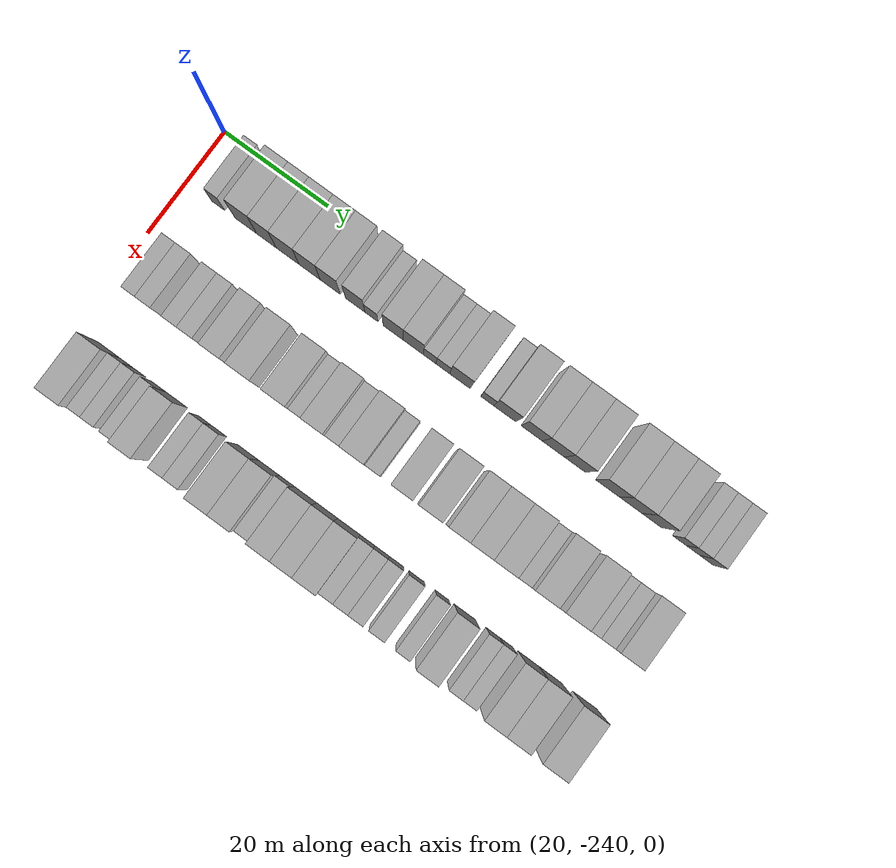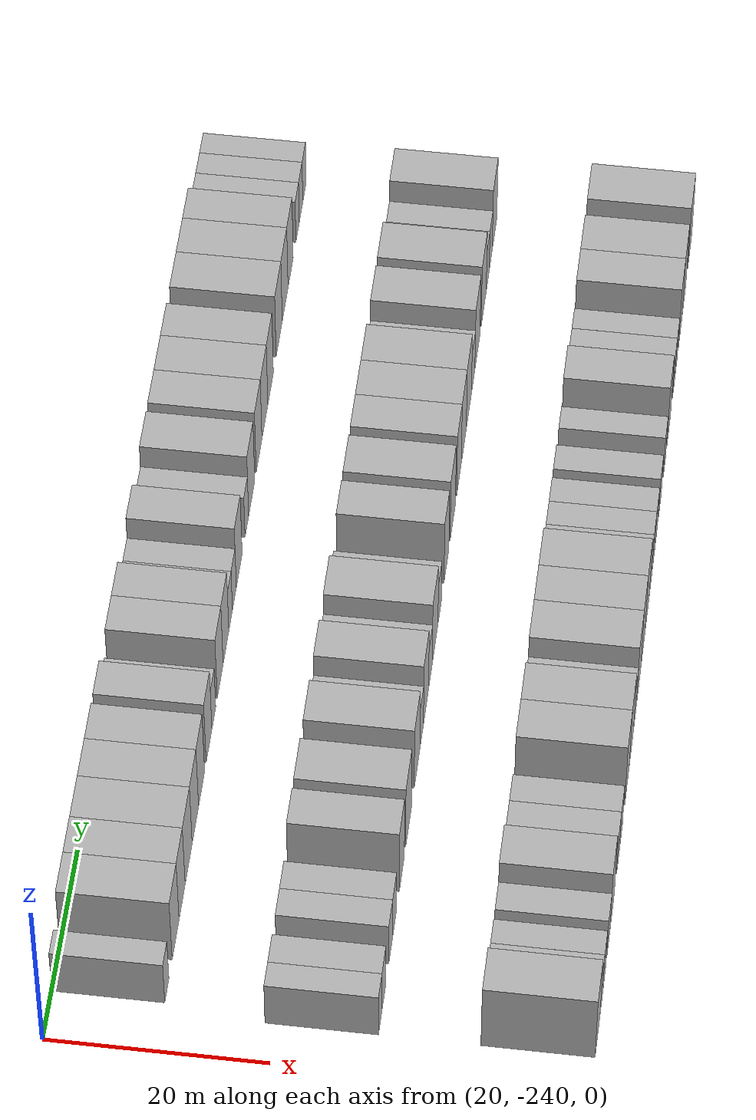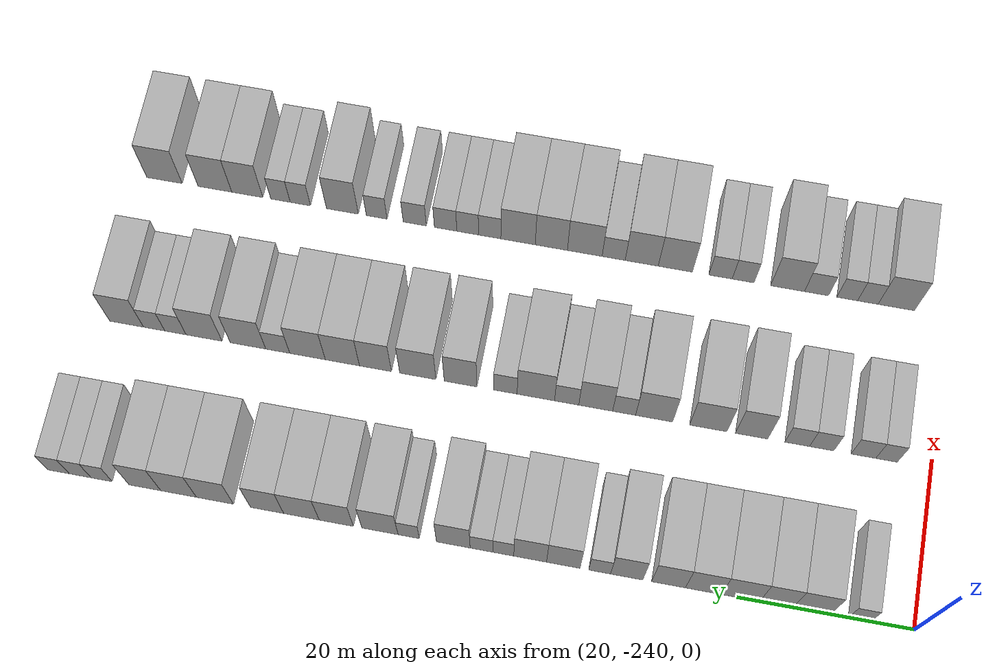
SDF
<sdf version="1.6">
 <world name="default">
  <model name="building_1">
   <static>1</static>
   <pose>25.0000 -233.7498 0 0.000000 0.000000 0.000000</pose>
   <link name="link">
    <pose>0 0 3.00 0 0 0</pose>
    <collision name="collision"><geometry><box><size>10.0000 2.5003 6.0000</size></box></geometry></collision>
    <visual name="visual">
     <cast_shadows>0</cast_shadows>
     <geometry><box><size>10.0000 2.5003 6.0000</size></box></geometry>
     <material>
      <script>
       <uri>model://HANNAS_wall/materials/scripts</uri>
       <uri>model://HANNAS_wall/materials/textures</uri>
       <name>vrc/HANNAS_wall</name>
      </script>
     </material>
    </visual>
   </link>
  </model>
  <model name="building_2">
   <static>1</static>
   <pose>25.0000 -228.3924 0 0.000000 0.000000 0.000000</pose>
   <link name="link">
    <pose>0 0 4.50 0 0 0</pose>
    <collision name="collision"><geometry><box><size>10.0000 4.2145 9.0000</size></box></geometry></collision>
    <visual name="visual">
     <cast_shadows>0</cast_shadows>
     <geometry><box><size>10.0000 4.2145 9.0000</size></box></geometry>
     <material>
      <script>
       <uri>model://HANNAS_wall/materials/scripts</uri>
       <uri>model://HANNAS_wall/materials/textures</uri>
       <name>vrc/HANNAS_wall</name>
      </script>
     </material>
    </visual>
   </link>
  </model>
  <model name="building_3">
   <static>1</static>
   <pose>25.0000 -224.3959 0 0.000000 0.000000 0.000000</pose>
   <link name="link">
    <pose>0 0 4.50 0 0 0</pose>
    <collision name="collision"><geometry><box><size>10.0000 3.7786 9.0000</size></box></geometry></collision>
    <visual name="visual">
     <cast_shadows>0</cast_shadows>
     <geometry><box><size>10.0000 3.7786 9.0000</size></box></geometry>
     <material>
      <script>
       <uri>model://HANNAS_wall/materials/scripts</uri>
       <uri>model://HANNAS_wall/materials/textures</uri>
       <name>vrc/HANNAS_wall</name>
      </script>
     </material>
    </visual>
   </link>
  </model>
  <model name="building_4">
   <static>1</static>
   <pose>25.0000 -220.3137 0 0.000000 0.000000 0.000000</pose>
   <link name="link">
    <pose>0 0 4.50 0 0 0</pose>
    <collision name="collision"><geometry><box><size>10.0000 4.3858 9.0000</size></box></geometry></collision>
    <visual name="visual">
     <cast_shadows>0</cast_shadows>
     <geometry><box><size>10.0000 4.3858 9.0000</size></box></geometry>
     <material>
      <script>
       <uri>model://HANNAS_wall/materials/scripts</uri>
       <uri>model://HANNAS_wall/materials/textures</uri>
       <name>vrc/HANNAS_wall</name>
      </script>
     </material>
    </visual>
   </link>
  </model>
  <model name="building_5">
   <static>1</static>
   <pose>25.0000 -216.0926 0 0.000000 0.000000 0.000000</pose>
   <link name="link">
    <pose>0 0 4.50 0 0 0</pose>
    <collision name="collision"><geometry><box><size>10.0000 4.0564 9.0000</size></box></geometry></collision>
    <visual name="visual">
     <cast_shadows>0</cast_shadows>
     <geometry><box><size>10.0000 4.0564 9.0000</size></box></geometry>
     <material>
      <script>
       <uri>model://HANNAS_wall/materials/scripts</uri>
       <uri>model://HANNAS_wall/materials/textures</uri>
       <name>vrc/HANNAS_wall</name>
      </script>
     </material>
    </visual>
   </link>
  </model>
  <model name="building_6">
   <static>1</static>
   <pose>25.0000 -212.1384 0 0.000000 0.000000 0.000000</pose>
   <link name="link">
    <pose>0 0 4.50 0 0 0</pose>
    <collision name="collision"><geometry><box><size>10.0000 3.8520 9.0000</size></box></geometry></collision>
    <visual name="visual">
     <cast_shadows>0</cast_shadows>
     <geometry><box><size>10.0000 3.8520 9.0000</size></box></geometry>
     <material>
      <script>
       <uri>model://HANNAS_wall/materials/scripts</uri>
       <uri>model://HANNAS_wall/materials/textures</uri>
       <name>vrc/HANNAS_wall</name>
      </script>
     </material>
    </visual>
   </link>
  </model>
  <model name="building_7">
   <static>1</static>
   <pose>25.0000 -207.3622 0 0.000000 0.000000 0.000000</pose>
   <link name="link">
    <pose>0 0 4.50 0 0 0</pose>
    <collision name="collision"><geometry><box><size>10.0000 3.7003 9.0000</size></box></geometry></collision>
    <visual name="visual">
     <cast_shadows>0</cast_shadows>
     <geometry><box><size>10.0000 3.7003 9.0000</size></box></geometry>
     <material>
      <script>
       <uri>model://HANNAS_wall/materials/scripts</uri>
       <uri>model://HANNAS_wall/materials/textures</uri>
       <name>vrc/HANNAS_wall</name>
      </script>
     </material>
    </visual>
   </link>
  </model>
  <model name="building_8">
   <static>1</static>
   <pose>25.0000 -204.2647 0 0.000000 0.000000 0.000000</pose>
   <link name="link">
    <pose>0 0 3.00 0 0 0</pose>
    <collision name="collision"><geometry><box><size>10.0000 2.4949 6.0000</size></box></geometry></collision>
    <visual name="visual">
     <cast_shadows>0</cast_shadows>
     <geometry><box><size>10.0000 2.4949 6.0000</size></box></geometry>
     <material>
      <script>
       <uri>model://HANNAS_wall/materials/scripts</uri>
       <uri>model://HANNAS_wall/materials/textures</uri>
       <name>vrc/HANNAS_wall</name>
      </script>
     </material>
    </visual>
   </link>
  </model>
  <model name="building_9">
   <static>1</static>
   <pose>25.0000 -200.0930 0 0.000000 0.000000 0.000000</pose>
   <link name="link">
    <pose>0 0 4.50 0 0 0</pose>
    <collision name="collision"><geometry><box><size>10.0000 3.8484 9.0000</size></box></geometry></collision>
    <visual name="visual">
     <cast_shadows>0</cast_shadows>
     <geometry><box><size>10.0000 3.8484 9.0000</size></box></geometry>
     <material>
      <script>
       <uri>model://HANNAS_wall/materials/scripts</uri>
       <uri>model://HANNAS_wall/materials/textures</uri>
       <name>vrc/HANNAS_wall</name>
      </script>
     </material>
    </visual>
   </link>
  </model>
  <model name="building_10">
   <static>1</static>
   <pose>25.0000 -196.2790 0 0.000000 0.000000 0.000000</pose>
   <link name="link">
    <pose>0 0 4.50 0 0 0</pose>
    <collision name="collision"><geometry><box><size>10.0000 3.7796 9.0000</size></box></geometry></collision>
    <visual name="visual">
     <cast_shadows>0</cast_shadows>
     <geometry><box><size>10.0000 3.7796 9.0000</size></box></geometry>
     <material>
      <script>
       <uri>model://HANNAS_wall/materials/scripts</uri>
       <uri>model://HANNAS_wall/materials/textures</uri>
       <name>vrc/HANNAS_wall</name>
      </script>
     </material>
    </visual>
   </link>
  </model>
  <model name="building_11">
   <static>1</static>
   <pose>25.0000 -193.1830 0 0.000000 0.000000 0.000000</pose>
   <link name="link">
    <pose>0 0 3.00 0 0 0</pose>
    <collision name="collision"><geometry><box><size>10.0000 2.4123 6.0000</size></box></geometry></collision>
    <visual name="visual">
     <cast_shadows>0</cast_shadows>
     <geometry><box><size>10.0000 2.4123 6.0000</size></box></geometry>
     <material>
      <script>
       <uri>model://HANNAS_wall/materials/scripts</uri>
       <uri>model://HANNAS_wall/materials/textures</uri>
       <name>vrc/HANNAS_wall</name>
      </script>
     </material>
    </visual>
   </link>
  </model>
  <model name="building_12">
   <static>1</static>
   <pose>25.0000 -190.6656 0 0.000000 0.000000 0.000000</pose>
   <link name="link">
    <pose>0 0 3.00 0 0 0</pose>
    <collision name="collision"><geometry><box><size>10.0000 2.6224 6.0000</size></box></geometry></collision>
    <visual name="visual">
     <cast_shadows>0</cast_shadows>
     <geometry><box><size>10.0000 2.6224 6.0000</size></box></geometry>
     <material>
      <script>
       <uri>model://HANNAS_wall/materials/scripts</uri>
       <uri>model://HANNAS_wall/materials/textures</uri>
       <name>vrc/HANNAS_wall</name>
      </script>
     </material>
    </visual>
   </link>
  </model>
  <model name="building_13">
   <static>1</static>
   <pose>25.0000 -187.4078 0 0.000000 0.000000 0.000000</pose>
   <link name="link">
    <pose>0 0 4.50 0 0 0</pose>
    <collision name="collision"><geometry><box><size>10.0000 3.8932 9.0000</size></box></geometry></collision>
    <visual name="visual">
     <cast_shadows>0</cast_shadows>
     <geometry><box><size>10.0000 3.8932 9.0000</size></box></geometry>
     <material>
      <script>
       <uri>model://HANNAS_wall/materials/scripts</uri>
       <uri>model://HANNAS_wall/materials/textures</uri>
       <name>vrc/HANNAS_wall</name>
      </script>
     </material>
    </visual>
   </link>
  </model>
  <model name="building_14">
   <static>1</static>
   <pose>25.0000 -182.2265 0 0.000000 0.000000 0.000000</pose>
   <link name="link">
    <pose>0 0 3.00 0 0 0</pose>
    <collision name="collision"><geometry><box><size>10.0000 2.4693 6.0000</size></box></geometry></collision>
    <visual name="visual">
     <cast_shadows>0</cast_shadows>
     <geometry><box><size>10.0000 2.4693 6.0000</size></box></geometry>
     <material>
      <script>
       <uri>model://HANNAS_wall/materials/scripts</uri>
       <uri>model://HANNAS_wall/materials/textures</uri>
       <name>vrc/HANNAS_wall</name>
      </script>
     </material>
    </visual>
   </link>
  </model>
  <model name="building_15">
   <static>1</static>
   <pose>25.0000 -178.8925 0 0.000000 0.000000 0.000000</pose>
   <link name="link">
    <pose>0 0 4.50 0 0 0</pose>
    <collision name="collision"><geometry><box><size>10.0000 4.1987 9.0000</size></box></geometry></collision>
    <visual name="visual">
     <cast_shadows>0</cast_shadows>
     <geometry><box><size>10.0000 4.1987 9.0000</size></box></geometry>
     <material>
      <script>
       <uri>model://HANNAS_wall/materials/scripts</uri>
       <uri>model://HANNAS_wall/materials/textures</uri>
       <name>vrc/HANNAS_wall</name>
      </script>
     </material>
    </visual>
   </link>
  </model>
  <model name="building_16">
   <static>1</static>
   <pose>25.0000 -173.7933 0 0.000000 0.000000 0.000000</pose>
   <link name="link">
    <pose>0 0 4.50 0 0 0</pose>
    <collision name="collision"><geometry><box><size>10.0000 3.9998 9.0000</size></box></geometry></collision>
    <visual name="visual">
     <cast_shadows>0</cast_shadows>
     <geometry><box><size>10.0000 3.9998 9.0000</size></box></geometry>
     <material>
      <script>
       <uri>model://HANNAS_wall/materials/scripts</uri>
       <uri>model://HANNAS_wall/materials/textures</uri>
       <name>vrc/HANNAS_wall</name>
      </script>
     </material>
    </visual>
   </link>
  </model>
  <model name="building_17">
   <static>1</static>
   <pose>25.0000 -169.7118 0 0.000000 0.000000 0.000000</pose>
   <link name="link">
    <pose>0 0 4.50 0 0 0</pose>
    <collision name="collision"><geometry><box><size>10.0000 4.1631 9.0000</size></box></geometry></collision>
    <visual name="visual">
     <cast_shadows>0</cast_shadows>
     <geometry><box><size>10.0000 4.1631 9.0000</size></box></geometry>
     <material>
      <script>
       <uri>model://HANNAS_wall/materials/scripts</uri>
       <uri>model://HANNAS_wall/materials/textures</uri>
       <name>vrc/HANNAS_wall</name>
      </script>
     </material>
    </visual>
   </link>
  </model>
  <model name="building_18">
   <static>1</static>
   <pose>25.0000 -165.6820 0 0.000000 0.000000 0.000000</pose>
   <link name="link">
    <pose>0 0 4.50 0 0 0</pose>
    <collision name="collision"><geometry><box><size>10.0000 3.8965 9.0000</size></box></geometry></collision>
    <visual name="visual">
     <cast_shadows>0</cast_shadows>
     <geometry><box><size>10.0000 3.8965 9.0000</size></box></geometry>
     <material>
      <script>
       <uri>model://HANNAS_wall/materials/scripts</uri>
       <uri>model://HANNAS_wall/materials/textures</uri>
       <name>vrc/HANNAS_wall</name>
      </script>
     </material>
    </visual>
   </link>
  </model>
  <model name="building_19">
   <static>1</static>
   <pose>25.0000 -159.5508 0 0.000000 0.000000 0.000000</pose>
   <link name="link">
    <pose>0 0 4.50 0 0 0</pose>
    <collision name="collision"><geometry><box><size>10.0000 4.3658 9.0000</size></box></geometry></collision>
    <visual name="visual">
     <cast_shadows>0</cast_shadows>
     <geometry><box><size>10.0000 4.3658 9.0000</size></box></geometry>
     <material>
      <script>
       <uri>model://HANNAS_wall/materials/scripts</uri>
       <uri>model://HANNAS_wall/materials/textures</uri>
       <name>vrc/HANNAS_wall</name>
      </script>
     </material>
    </visual>
   </link>
  </model>
  <model name="building_20">
   <static>1</static>
   <pose>25.0000 -155.2540 0 0.000000 0.000000 0.000000</pose>
   <link name="link">
    <pose>0 0 4.50 0 0 0</pose>
    <collision name="collision"><geometry><box><size>10.0000 4.2279 9.0000</size></box></geometry></collision>
    <visual name="visual">
     <cast_shadows>0</cast_shadows>
     <geometry><box><size>10.0000 4.2279 9.0000</size></box></geometry>
     <material>
      <script>
       <uri>model://HANNAS_wall/materials/scripts</uri>
       <uri>model://HANNAS_wall/materials/textures</uri>
       <name>vrc/HANNAS_wall</name>
      </script>
     </material>
    </visual>
   </link>
  </model>
  <model name="building_21">
   <static>1</static>
   <pose>25.0000 -151.2550 0 0.000000 0.000000 0.000000</pose>
   <link name="link">
    <pose>0 0 4.50 0 0 0</pose>
    <collision name="collision"><geometry><box><size>10.0000 3.7702 9.0000</size></box></geometry></collision>
    <visual name="visual">
     <cast_shadows>0</cast_shadows>
     <geometry><box><size>10.0000 3.7702 9.0000</size></box></geometry>
     <material>
      <script>
       <uri>model://HANNAS_wall/materials/scripts</uri>
       <uri>model://HANNAS_wall/materials/textures</uri>
       <name>vrc/HANNAS_wall</name>
      </script>
     </material>
    </visual>
   </link>
  </model>
  <model name="building_22">
   <static>1</static>
   <pose>25.0000 -146.1154 0 0.000000 0.000000 0.000000</pose>
   <link name="link">
    <pose>0 0 3.00 0 0 0</pose>
    <collision name="collision"><geometry><box><size>10.0000 2.5090 6.0000</size></box></geometry></collision>
    <visual name="visual">
     <cast_shadows>0</cast_shadows>
     <geometry><box><size>10.0000 2.5090 6.0000</size></box></geometry>
     <material>
      <script>
       <uri>model://HANNAS_wall/materials/scripts</uri>
       <uri>model://HANNAS_wall/materials/textures</uri>
       <name>vrc/HANNAS_wall</name>
      </script>
     </material>
    </visual>
   </link>
  </model>
  <model name="building_23">
   <static>1</static>
   <pose>25.0000 -143.5626 0 0.000000 0.000000 0.000000</pose>
   <link name="link">
    <pose>0 0 3.00 0 0 0</pose>
    <collision name="collision"><geometry><box><size>10.0000 2.5967 6.0000</size></box></geometry></collision>
    <visual name="visual">
     <cast_shadows>0</cast_shadows>
     <geometry><box><size>10.0000 2.5967 6.0000</size></box></geometry>
     <material>
      <script>
       <uri>model://HANNAS_wall/materials/scripts</uri>
       <uri>model://HANNAS_wall/materials/textures</uri>
       <name>vrc/HANNAS_wall</name>
      </script>
     </material>
    </visual>
   </link>
  </model>
  <model name="building_24">
   <static>1</static>
   <pose>25.0000 -140.9930 0 0.000000 0.000000 0.000000</pose>
   <link name="link">
    <pose>0 0 3.00 0 0 0</pose>
    <collision name="collision"><geometry><box><size>10.0000 2.5427 6.0000</size></box></geometry></collision>
    <visual name="visual">
     <cast_shadows>0</cast_shadows>
     <geometry><box><size>10.0000 2.5427 6.0000</size></box></geometry>
     <material>
      <script>
       <uri>model://HANNAS_wall/materials/scripts</uri>
       <uri>model://HANNAS_wall/materials/textures</uri>
       <name>vrc/HANNAS_wall</name>
      </script>
     </material>
    </visual>
   </link>
  </model>
  <model name="building_120">
   <static>1</static>
   <pose>44.0000 -234.7517 0 0.000000 0.000000 0.000000</pose>
   <link name="link">
    <pose>0 0 3.00 0 0 0</pose>
    <collision name="collision"><geometry><box><size>10.0000 2.4966 6.0000</size></box></geometry></collision>
    <visual name="visual">
     <cast_shadows>0</cast_shadows>
     <geometry><box><size>10.0000 2.4966 6.0000</size></box></geometry>
     <material>
      <script>
       <uri>model://HANNAS_wall/materials/scripts</uri>
       <uri>model://HANNAS_wall/materials/textures</uri>
       <name>vrc/HANNAS_wall</name>
      </script>
     </material>
    </visual>
   </link>
  </model>
  <model name="building_121">
   <static>1</static>
   <pose>44.0000 -232.0628 0 0.000000 0.000000 0.000000</pose>
   <link name="link">
    <pose>0 0 3.00 0 0 0</pose>
    <collision name="collision"><geometry><box><size>10.0000 2.8812 6.0000</size></box></geometry></collision>
    <visual name="visual">
     <cast_shadows>0</cast_shadows>
     <geometry><box><size>10.0000 2.8812 6.0000</size></box></geometry>
     <material>
      <script>
       <uri>model://HANNAS_wall/materials/scripts</uri>
       <uri>model://HANNAS_wall/materials/textures</uri>
       <name>vrc/HANNAS_wall</name>
      </script>
     </material>
    </visual>
   </link>
  </model>
  <model name="building_122">
   <static>1</static>
   <pose>44.0000 -227.2035 0 0.000000 0.000000 0.000000</pose>
   <link name="link">
    <pose>0 0 3.00 0 0 0</pose>
    <collision name="collision"><geometry><box><size>10.0000 2.8374 6.0000</size></box></geometry></collision>
    <visual name="visual">
     <cast_shadows>0</cast_shadows>
     <geometry><box><size>10.0000 2.8374 6.0000</size></box></geometry>
     <material>
      <script>
       <uri>model://HANNAS_wall/materials/scripts</uri>
       <uri>model://HANNAS_wall/materials/textures</uri>
       <name>vrc/HANNAS_wall</name>
      </script>
     </material>
    </visual>
   </link>
  </model>
  <model name="building_123">
   <static>1</static>
   <pose>44.0000 -224.3443 0 0.000000 0.000000 0.000000</pose>
   <link name="link">
    <pose>0 0 3.00 0 0 0</pose>
    <collision name="collision"><geometry><box><size>10.0000 2.8811 6.0000</size></box></geometry></collision>
    <visual name="visual">
     <cast_shadows>0</cast_shadows>
     <geometry><box><size>10.0000 2.8811 6.0000</size></box></geometry>
     <material>
      <script>
       <uri>model://HANNAS_wall/materials/scripts</uri>
       <uri>model://HANNAS_wall/materials/textures</uri>
       <name>vrc/HANNAS_wall</name>
      </script>
     </material>
    </visual>
   </link>
  </model>
  <model name="building_124">
   <static>1</static>
   <pose>44.0000 -219.0115 0 0.000000 0.000000 0.000000</pose>
   <link name="link">
    <pose>0 0 4.50 0 0 0</pose>
    <collision name="collision"><geometry><box><size>10.0000 3.7844 9.0000</size></box></geometry></collision>
    <visual name="visual">
     <cast_shadows>0</cast_shadows>
     <geometry><box><size>10.0000 3.7844 9.0000</size></box></geometry>
     <material>
      <script>
       <uri>model://HANNAS_wall/materials/scripts</uri>
       <uri>model://HANNAS_wall/materials/textures</uri>
       <name>vrc/HANNAS_wall</name>
      </script>
     </material>
    </visual>
   </link>
  </model>
  <model name="building_125">
   <static>1</static>
   <pose>44.0000 -213.9226 0 0.000000 0.000000 0.000000</pose>
   <link name="link">
    <pose>0 0 4.50 0 0 0</pose>
    <collision name="collision"><geometry><box><size>10.0000 4.3934 9.0000</size></box></geometry></collision>
    <visual name="visual">
     <cast_shadows>0</cast_shadows>
     <geometry><box><size>10.0000 4.3934 9.0000</size></box></geometry>
     <material>
      <script>
       <uri>model://HANNAS_wall/materials/scripts</uri>
       <uri>model://HANNAS_wall/materials/textures</uri>
       <name>vrc/HANNAS_wall</name>
      </script>
     </material>
    </visual>
   </link>
  </model>
  <model name="building_126">
   <static>1</static>
   <pose>44.0000 -207.5353 0 0.000000 0.000000 0.000000</pose>
   <link name="link">
    <pose>0 0 4.50 0 0 0</pose>
    <collision name="collision"><geometry><box><size>10.0000 4.3813 9.0000</size></box></geometry></collision>
    <visual name="visual">
     <cast_shadows>0</cast_shadows>
     <geometry><box><size>10.0000 4.3813 9.0000</size></box></geometry>
     <material>
      <script>
       <uri>model://HANNAS_wall/materials/scripts</uri>
       <uri>model://HANNAS_wall/materials/textures</uri>
       <name>vrc/HANNAS_wall</name>
      </script>
     </material>
    </visual>
   </link>
  </model>
  <model name="building_127">
   <static>1</static>
   <pose>44.0000 -203.9916 0 0.000000 0.000000 0.000000</pose>
   <link name="link">
    <pose>0 0 3.00 0 0 0</pose>
    <collision name="collision"><geometry><box><size>10.0000 2.7059 6.0000</size></box></geometry></collision>
    <visual name="visual">
     <cast_shadows>0</cast_shadows>
     <geometry><box><size>10.0000 2.7059 6.0000</size></box></geometry>
     <material>
      <script>
       <uri>model://HANNAS_wall/materials/scripts</uri>
       <uri>model://HANNAS_wall/materials/textures</uri>
       <name>vrc/HANNAS_wall</name>
      </script>
     </material>
    </visual>
   </link>
  </model>
  <model name="building_128">
   <static>1</static>
   <pose>44.0000 -200.6323 0 0.000000 0.000000 0.000000</pose>
   <link name="link">
    <pose>0 0 4.50 0 0 0</pose>
    <collision name="collision"><geometry><box><size>10.0000 4.0129 9.0000</size></box></geometry></collision>
    <visual name="visual">
     <cast_shadows>0</cast_shadows>
     <geometry><box><size>10.0000 4.0129 9.0000</size></box></geometry>
     <material>
      <script>
       <uri>model://HANNAS_wall/materials/scripts</uri>
       <uri>model://HANNAS_wall/materials/textures</uri>
       <name>vrc/HANNAS_wall</name>
      </script>
     </material>
    </visual>
   </link>
  </model>
  <model name="building_129">
   <static>1</static>
   <pose>44.0000 -197.1854 0 0.000000 0.000000 0.000000</pose>
   <link name="link">
    <pose>0 0 3.00 0 0 0</pose>
    <collision name="collision"><geometry><box><size>10.0000 2.8807 6.0000</size></box></geometry></collision>
    <visual name="visual">
     <cast_shadows>0</cast_shadows>
     <geometry><box><size>10.0000 2.8807 6.0000</size></box></geometry>
     <material>
      <script>
       <uri>model://HANNAS_wall/materials/scripts</uri>
       <uri>model://HANNAS_wall/materials/textures</uri>
       <name>vrc/HANNAS_wall</name>
      </script>
     </material>
    </visual>
   </link>
  </model>
  <model name="building_130">
   <static>1</static>
   <pose>44.0000 -193.5192 0 0.000000 0.000000 0.000000</pose>
   <link name="link">
    <pose>0 0 4.50 0 0 0</pose>
    <collision name="collision"><geometry><box><size>10.0000 4.4517 9.0000</size></box></geometry></collision>
    <visual name="visual">
     <cast_shadows>0</cast_shadows>
     <geometry><box><size>10.0000 4.4517 9.0000</size></box></geometry>
     <material>
      <script>
       <uri>model://HANNAS_wall/materials/scripts</uri>
       <uri>model://HANNAS_wall/materials/textures</uri>
       <name>vrc/HANNAS_wall</name>
      </script>
     </material>
    </visual>
   </link>
  </model>
  <model name="building_131">
   <static>1</static>
   <pose>44.0000 -189.8943 0 0.000000 0.000000 0.000000</pose>
   <link name="link">
    <pose>0 0 3.00 0 0 0</pose>
    <collision name="collision"><geometry><box><size>10.0000 2.7982 6.0000</size></box></geometry></collision>
    <visual name="visual">
     <cast_shadows>0</cast_shadows>
     <geometry><box><size>10.0000 2.7982 6.0000</size></box></geometry>
     <material>
      <script>
       <uri>model://HANNAS_wall/materials/scripts</uri>
       <uri>model://HANNAS_wall/materials/textures</uri>
       <name>vrc/HANNAS_wall</name>
      </script>
     </material>
    </visual>
   </link>
  </model>
  <model name="building_132">
   <static>1</static>
   <pose>44.0000 -184.5420 0 0.000000 0.000000 0.000000</pose>
   <link name="link">
    <pose>0 0 4.50 0 0 0</pose>
    <collision name="collision"><geometry><box><size>10.0000 3.9063 9.0000</size></box></geometry></collision>
    <visual name="visual">
     <cast_shadows>0</cast_shadows>
     <geometry><box><size>10.0000 3.9063 9.0000</size></box></geometry>
     <material>
      <script>
       <uri>model://HANNAS_wall/materials/scripts</uri>
       <uri>model://HANNAS_wall/materials/textures</uri>
       <name>vrc/HANNAS_wall</name>
      </script>
     </material>
    </visual>
   </link>
  </model>
  <model name="building_133">
   <static>1</static>
   <pose>44.0000 -179.4204 0 0.000000 0.000000 0.000000</pose>
   <link name="link">
    <pose>0 0 4.50 0 0 0</pose>
    <collision name="collision"><geometry><box><size>10.0000 4.3369 9.0000</size></box></geometry></collision>
    <visual name="visual">
     <cast_shadows>0</cast_shadows>
     <geometry><box><size>10.0000 4.3369 9.0000</size></box></geometry>
     <material>
      <script>
       <uri>model://HANNAS_wall/materials/scripts</uri>
       <uri>model://HANNAS_wall/materials/textures</uri>
       <name>vrc/HANNAS_wall</name>
      </script>
     </material>
    </visual>
   </link>
  </model>
  <model name="building_134">
   <static>1</static>
   <pose>44.0000 -174.3304 0 0.000000 0.000000 0.000000</pose>
   <link name="link">
    <pose>0 0 4.50 0 0 0</pose>
    <collision name="collision"><geometry><box><size>10.0000 3.8432 9.0000</size></box></geometry></collision>
    <visual name="visual">
     <cast_shadows>0</cast_shadows>
     <geometry><box><size>10.0000 3.8432 9.0000</size></box></geometry>
     <material>
      <script>
       <uri>model://HANNAS_wall/materials/scripts</uri>
       <uri>model://HANNAS_wall/materials/textures</uri>
       <name>vrc/HANNAS_wall</name>
      </script>
     </material>
    </visual>
   </link>
  </model>
  <model name="building_135">
   <static>1</static>
   <pose>44.0000 -170.3421 0 0.000000 0.000000 0.000000</pose>
   <link name="link">
    <pose>0 0 4.50 0 0 0</pose>
    <collision name="collision"><geometry><box><size>10.0000 4.1333 9.0000</size></box></geometry></collision>
    <visual name="visual">
     <cast_shadows>0</cast_shadows>
     <geometry><box><size>10.0000 4.1333 9.0000</size></box></geometry>
     <material>
      <script>
       <uri>model://HANNAS_wall/materials/scripts</uri>
       <uri>model://HANNAS_wall/materials/textures</uri>
       <name>vrc/HANNAS_wall</name>
      </script>
     </material>
    </visual>
   </link>
  </model>
  <model name="building_136">
   <static>1</static>
   <pose>44.0000 -166.1256 0 0.000000 0.000000 0.000000</pose>
   <link name="link">
    <pose>0 0 4.50 0 0 0</pose>
    <collision name="collision"><geometry><box><size>10.0000 4.2998 9.0000</size></box></geometry></collision>
    <visual name="visual">
     <cast_shadows>0</cast_shadows>
     <geometry><box><size>10.0000 4.2998 9.0000</size></box></geometry>
     <material>
      <script>
       <uri>model://HANNAS_wall/materials/scripts</uri>
       <uri>model://HANNAS_wall/materials/textures</uri>
       <name>vrc/HANNAS_wall</name>
      </script>
     </material>
    </visual>
   </link>
  </model>
  <model name="building_137">
   <static>1</static>
   <pose>44.0000 -162.5180 0 0.000000 0.000000 0.000000</pose>
   <link name="link">
    <pose>0 0 3.00 0 0 0</pose>
    <collision name="collision"><geometry><box><size>10.0000 2.9153 6.0000</size></box></geometry></collision>
    <visual name="visual">
     <cast_shadows>0</cast_shadows>
     <geometry><box><size>10.0000 2.9153 6.0000</size></box></geometry>
     <material>
      <script>
       <uri>model://HANNAS_wall/materials/scripts</uri>
       <uri>model://HANNAS_wall/materials/textures</uri>
       <name>vrc/HANNAS_wall</name>
      </script>
     </material>
    </visual>
   </link>
  </model>
  <model name="building_138">
   <static>1</static>
   <pose>44.0000 -158.9020 0 0.000000 0.000000 0.000000</pose>
   <link name="link">
    <pose>0 0 4.50 0 0 0</pose>
    <collision name="collision"><geometry><box><size>10.0000 4.3167 9.0000</size></box></geometry></collision>
    <visual name="visual">
     <cast_shadows>0</cast_shadows>
     <geometry><box><size>10.0000 4.3167 9.0000</size></box></geometry>
     <material>
      <script>
       <uri>model://HANNAS_wall/materials/scripts</uri>
       <uri>model://HANNAS_wall/materials/textures</uri>
       <name>vrc/HANNAS_wall</name>
      </script>
     </material>
    </visual>
   </link>
  </model>
  <model name="building_139">
   <static>1</static>
   <pose>44.0000 -153.5489 0 0.000000 0.000000 0.000000</pose>
   <link name="link">
    <pose>0 0 4.50 0 0 0</pose>
    <collision name="collision"><geometry><box><size>10.0000 4.3896 9.0000</size></box></geometry></collision>
    <visual name="visual">
     <cast_shadows>0</cast_shadows>
     <geometry><box><size>10.0000 4.3896 9.0000</size></box></geometry>
     <material>
      <script>
       <uri>model://HANNAS_wall/materials/scripts</uri>
       <uri>model://HANNAS_wall/materials/textures</uri>
       <name>vrc/HANNAS_wall</name>
      </script>
     </material>
    </visual>
   </link>
  </model>
  <model name="building_140">
   <static>1</static>
   <pose>44.0000 -150.0524 0 0.000000 0.000000 0.000000</pose>
   <link name="link">
    <pose>0 0 3.00 0 0 0</pose>
    <collision name="collision"><geometry><box><size>10.0000 2.6033 6.0000</size></box></geometry></collision>
    <visual name="visual">
     <cast_shadows>0</cast_shadows>
     <geometry><box><size>10.0000 2.6033 6.0000</size></box></geometry>
     <material>
      <script>
       <uri>model://HANNAS_wall/materials/scripts</uri>
       <uri>model://HANNAS_wall/materials/textures</uri>
       <name>vrc/HANNAS_wall</name>
      </script>
     </material>
    </visual>
   </link>
  </model>
  <model name="building_141">
   <static>1</static>
   <pose>44.0000 -147.4474 0 0.000000 0.000000 0.000000</pose>
   <link name="link">
    <pose>0 0 3.00 0 0 0</pose>
    <collision name="collision"><geometry><box><size>10.0000 2.6067 6.0000</size></box></geometry></collision>
    <visual name="visual">
     <cast_shadows>0</cast_shadows>
     <geometry><box><size>10.0000 2.6067 6.0000</size></box></geometry>
     <material>
      <script>
       <uri>model://HANNAS_wall/materials/scripts</uri>
       <uri>model://HANNAS_wall/materials/textures</uri>
       <name>vrc/HANNAS_wall</name>
      </script>
     </material>
    </visual>
   </link>
  </model>
  <model name="building_142">
   <static>1</static>
   <pose>44.0000 -144.0735 0 0.000000 0.000000 0.000000</pose>
   <link name="link">
    <pose>0 0 4.50 0 0 0</pose>
    <collision name="collision"><geometry><box><size>10.0000 4.1413 9.0000</size></box></geometry></collision>
    <visual name="visual">
     <cast_shadows>0</cast_shadows>
     <geometry><box><size>10.0000 4.1413 9.0000</size></box></geometry>
     <material>
      <script>
       <uri>model://HANNAS_wall/materials/scripts</uri>
       <uri>model://HANNAS_wall/materials/textures</uri>
       <name>vrc/HANNAS_wall</name>
      </script>
     </material>
    </visual>
   </link>
  </model>
  <model name="building_240">
   <static>1</static>
   <pose>63.0000 -233.8261 0 0.000000 0.000000 0.000000</pose>
   <link name="link">
    <pose>0 0 4.50 0 0 0</pose>
    <collision name="collision"><geometry><box><size>10.0000 4.3477 9.0000</size></box></geometry></collision>
    <visual name="visual">
     <cast_shadows>0</cast_shadows>
     <geometry><box><size>10.0000 4.3477 9.0000</size></box></geometry>
     <material>
      <script>
       <uri>model://HANNAS_wall/materials/scripts</uri>
       <uri>model://HANNAS_wall/materials/textures</uri>
       <name>vrc/HANNAS_wall</name>
      </script>
     </material>
    </visual>
   </link>
  </model>
  <model name="building_241">
   <static>1</static>
   <pose>63.0000 -230.4275 0 0.000000 0.000000 0.000000</pose>
   <link name="link">
    <pose>0 0 3.00 0 0 0</pose>
    <collision name="collision"><geometry><box><size>10.0000 2.4494 6.0000</size></box></geometry></collision>
    <visual name="visual">
     <cast_shadows>0</cast_shadows>
     <geometry><box><size>10.0000 2.4494 6.0000</size></box></geometry>
     <material>
      <script>
       <uri>model://HANNAS_wall/materials/scripts</uri>
       <uri>model://HANNAS_wall/materials/textures</uri>
       <name>vrc/HANNAS_wall</name>
      </script>
     </material>
    </visual>
   </link>
  </model>
  <model name="building_242">
   <static>1</static>
   <pose>63.0000 -227.9516 0 0.000000 0.000000 0.000000</pose>
   <link name="link">
    <pose>0 0 3.00 0 0 0</pose>
    <collision name="collision"><geometry><box><size>10.0000 2.5025 6.0000</size></box></geometry></collision>
    <visual name="visual">
     <cast_shadows>0</cast_shadows>
     <geometry><box><size>10.0000 2.5025 6.0000</size></box></geometry>
     <material>
      <script>
       <uri>model://HANNAS_wall/materials/scripts</uri>
       <uri>model://HANNAS_wall/materials/textures</uri>
       <name>vrc/HANNAS_wall</name>
      </script>
     </material>
    </visual>
   </link>
  </model>
  <model name="building_243">
   <static>1</static>
   <pose>63.0000 -224.2460 0 0.000000 0.000000 0.000000</pose>
   <link name="link">
    <pose>0 0 3.00 0 0 0</pose>
    <collision name="collision"><geometry><box><size>10.0000 2.9086 6.0000</size></box></geometry></collision>
    <visual name="visual">
     <cast_shadows>0</cast_shadows>
     <geometry><box><size>10.0000 2.9086 6.0000</size></box></geometry>
     <material>
      <script>
       <uri>model://HANNAS_wall/materials/scripts</uri>
       <uri>model://HANNAS_wall/materials/textures</uri>
       <name>vrc/HANNAS_wall</name>
      </script>
     </material>
    </visual>
   </link>
  </model>
  <model name="building_244">
   <static>1</static>
   <pose>63.0000 -220.7523 0 0.000000 0.000000 0.000000</pose>
   <link name="link">
    <pose>0 0 4.50 0 0 0</pose>
    <collision name="collision"><geometry><box><size>10.0000 4.0788 9.0000</size></box></geometry></collision>
    <visual name="visual">
     <cast_shadows>0</cast_shadows>
     <geometry><box><size>10.0000 4.0788 9.0000</size></box></geometry>
     <material>
      <script>
       <uri>model://HANNAS_wall/materials/scripts</uri>
       <uri>model://HANNAS_wall/materials/textures</uri>
       <name>vrc/HANNAS_wall</name>
      </script>
     </material>
    </visual>
   </link>
  </model>
  <model name="building_245">
   <static>1</static>
   <pose>63.0000 -215.3897 0 0.000000 0.000000 0.000000</pose>
   <link name="link">
    <pose>0 0 3.00 0 0 0</pose>
    <collision name="collision"><geometry><box><size>10.0000 2.6464 6.0000</size></box></geometry></collision>
    <visual name="visual">
     <cast_shadows>0</cast_shadows>
     <geometry><box><size>10.0000 2.6464 6.0000</size></box></geometry>
     <material>
      <script>
       <uri>model://HANNAS_wall/materials/scripts</uri>
       <uri>model://HANNAS_wall/materials/textures</uri>
       <name>vrc/HANNAS_wall</name>
      </script>
     </material>
    </visual>
   </link>
  </model>
  <model name="building_246">
   <static>1</static>
   <pose>63.0000 -212.6491 0 0.000000 0.000000 0.000000</pose>
   <link name="link">
    <pose>0 0 3.00 0 0 0</pose>
    <collision name="collision"><geometry><box><size>10.0000 2.8349 6.0000</size></box></geometry></collision>
    <visual name="visual">
     <cast_shadows>0</cast_shadows>
     <geometry><box><size>10.0000 2.8349 6.0000</size></box></geometry>
     <material>
      <script>
       <uri>model://HANNAS_wall/materials/scripts</uri>
       <uri>model://HANNAS_wall/materials/textures</uri>
       <name>vrc/HANNAS_wall</name>
      </script>
     </material>
    </visual>
   </link>
  </model>
  <model name="building_247">
   <static>1</static>
   <pose>63.0000 -207.1535 0 0.000000 0.000000 0.000000</pose>
   <link name="link">
    <pose>0 0 4.50 0 0 0</pose>
    <collision name="collision"><geometry><box><size>10.0000 4.1562 9.0000</size></box></geometry></collision>
    <visual name="visual">
     <cast_shadows>0</cast_shadows>
     <geometry><box><size>10.0000 4.1562 9.0000</size></box></geometry>
     <material>
      <script>
       <uri>model://HANNAS_wall/materials/scripts</uri>
       <uri>model://HANNAS_wall/materials/textures</uri>
       <name>vrc/HANNAS_wall</name>
      </script>
     </material>
    </visual>
   </link>
  </model>
  <model name="building_248">
   <static>1</static>
   <pose>63.0000 -203.0605 0 0.000000 0.000000 0.000000</pose>
   <link name="link">
    <pose>0 0 4.50 0 0 0</pose>
    <collision name="collision"><geometry><box><size>10.0000 4.0299 9.0000</size></box></geometry></collision>
    <visual name="visual">
     <cast_shadows>0</cast_shadows>
     <geometry><box><size>10.0000 4.0299 9.0000</size></box></geometry>
     <material>
      <script>
       <uri>model://HANNAS_wall/materials/scripts</uri>
       <uri>model://HANNAS_wall/materials/textures</uri>
       <name>vrc/HANNAS_wall</name>
      </script>
     </material>
    </visual>
   </link>
  </model>
  <model name="building_249">
   <static>1</static>
   <pose>63.0000 -199.6374 0 0.000000 0.000000 0.000000</pose>
   <link name="link">
    <pose>0 0 3.00 0 0 0</pose>
    <collision name="collision"><geometry><box><size>10.0000 2.8163 6.0000</size></box></geometry></collision>
    <visual name="visual">
     <cast_shadows>0</cast_shadows>
     <geometry><box><size>10.0000 2.8163 6.0000</size></box></geometry>
     <material>
      <script>
       <uri>model://HANNAS_wall/materials/scripts</uri>
       <uri>model://HANNAS_wall/materials/textures</uri>
       <name>vrc/HANNAS_wall</name>
      </script>
     </material>
    </visual>
   </link>
  </model>
  <model name="building_250">
   <static>1</static>
   <pose>63.0000 -196.1032 0 0.000000 0.000000 0.000000</pose>
   <link name="link">
    <pose>0 0 4.50 0 0 0</pose>
    <collision name="collision"><geometry><box><size>10.0000 4.2523 9.0000</size></box></geometry></collision>
    <visual name="visual">
     <cast_shadows>0</cast_shadows>
     <geometry><box><size>10.0000 4.2523 9.0000</size></box></geometry>
     <material>
      <script>
       <uri>model://HANNAS_wall/materials/scripts</uri>
       <uri>model://HANNAS_wall/materials/textures</uri>
       <name>vrc/HANNAS_wall</name>
      </script>
     </material>
    </visual>
   </link>
  </model>
  <model name="building_251">
   <static>1</static>
   <pose>63.0000 -192.0062 0 0.000000 0.000000 0.000000</pose>
   <link name="link">
    <pose>0 0 4.50 0 0 0</pose>
    <collision name="collision"><geometry><box><size>10.0000 3.9417 9.0000</size></box></geometry></collision>
    <visual name="visual">
     <cast_shadows>0</cast_shadows>
     <geometry><box><size>10.0000 3.9417 9.0000</size></box></geometry>
     <material>
      <script>
       <uri>model://HANNAS_wall/materials/scripts</uri>
       <uri>model://HANNAS_wall/materials/textures</uri>
       <name>vrc/HANNAS_wall</name>
      </script>
     </material>
    </visual>
   </link>
  </model>
  <model name="building_252">
   <static>1</static>
   <pose>63.0000 -187.9199 0 0.000000 0.000000 0.000000</pose>
   <link name="link">
    <pose>0 0 4.50 0 0 0</pose>
    <collision name="collision"><geometry><box><size>10.0000 4.2307 9.0000</size></box></geometry></collision>
    <visual name="visual">
     <cast_shadows>0</cast_shadows>
     <geometry><box><size>10.0000 4.2307 9.0000</size></box></geometry>
     <material>
      <script>
       <uri>model://HANNAS_wall/materials/scripts</uri>
       <uri>model://HANNAS_wall/materials/textures</uri>
       <name>vrc/HANNAS_wall</name>
      </script>
     </material>
    </visual>
   </link>
  </model>
  <model name="building_253">
   <static>1</static>
   <pose>63.0000 -184.4346 0 0.000000 0.000000 0.000000</pose>
   <link name="link">
    <pose>0 0 3.00 0 0 0</pose>
    <collision name="collision"><geometry><box><size>10.0000 2.7399 6.0000</size></box></geometry></collision>
    <visual name="visual">
     <cast_shadows>0</cast_shadows>
     <geometry><box><size>10.0000 2.7399 6.0000</size></box></geometry>
     <material>
      <script>
       <uri>model://HANNAS_wall/materials/scripts</uri>
       <uri>model://HANNAS_wall/materials/textures</uri>
       <name>vrc/HANNAS_wall</name>
      </script>
     </material>
    </visual>
   </link>
  </model>
  <model name="building_254">
   <static>1</static>
   <pose>63.0000 -181.7183 0 0.000000 0.000000 0.000000</pose>
   <link name="link">
    <pose>0 0 3.00 0 0 0</pose>
    <collision name="collision"><geometry><box><size>10.0000 2.6927 6.0000</size></box></geometry></collision>
    <visual name="visual">
     <cast_shadows>0</cast_shadows>
     <geometry><box><size>10.0000 2.6927 6.0000</size></box></geometry>
     <material>
      <script>
       <uri>model://HANNAS_wall/materials/scripts</uri>
       <uri>model://HANNAS_wall/materials/textures</uri>
       <name>vrc/HANNAS_wall</name>
      </script>
     </material>
    </visual>
   </link>
  </model>
  <model name="building_255">
   <static>1</static>
   <pose>63.0000 -178.9886 0 0.000000 0.000000 0.000000</pose>
   <link name="link">
    <pose>0 0 3.00 0 0 0</pose>
    <collision name="collision"><geometry><box><size>10.0000 2.7666 6.0000</size></box></geometry></collision>
    <visual name="visual">
     <cast_shadows>0</cast_shadows>
     <geometry><box><size>10.0000 2.7666 6.0000</size></box></geometry>
     <material>
      <script>
       <uri>model://HANNAS_wall/materials/scripts</uri>
       <uri>model://HANNAS_wall/materials/textures</uri>
       <name>vrc/HANNAS_wall</name>
      </script>
     </material>
    </visual>
   </link>
  </model>
  <model name="building_256">
   <static>1</static>
   <pose>63.0000 -175.1691 0 0.000000 0.000000 0.000000</pose>
   <link name="link">
    <pose>0 0 3.00 0 0 0</pose>
    <collision name="collision"><geometry><box><size>10.0000 2.8724 6.0000</size></box></geometry></collision>
    <visual name="visual">
     <cast_shadows>0</cast_shadows>
     <geometry><box><size>10.0000 2.8724 6.0000</size></box></geometry>
     <material>
      <script>
       <uri>model://HANNAS_wall/materials/scripts</uri>
       <uri>model://HANNAS_wall/materials/textures</uri>
       <name>vrc/HANNAS_wall</name>
      </script>
     </material>
    </visual>
   </link>
  </model>
  <model name="building_257">
   <static>1</static>
   <pose>63.0000 -170.4440 0 0.000000 0.000000 0.000000</pose>
   <link name="link">
    <pose>0 0 3.00 0 0 0</pose>
    <collision name="collision"><geometry><box><size>10.0000 2.5780 6.0000</size></box></geometry></collision>
    <visual name="visual">
     <cast_shadows>0</cast_shadows>
     <geometry><box><size>10.0000 2.5780 6.0000</size></box></geometry>
     <material>
      <script>
       <uri>model://HANNAS_wall/materials/scripts</uri>
       <uri>model://HANNAS_wall/materials/textures</uri>
       <name>vrc/HANNAS_wall</name>
      </script>
     </material>
    </visual>
   </link>
  </model>
  <model name="building_258">
   <static>1</static>
   <pose>63.0000 -166.1721 0 0.000000 0.000000 0.000000</pose>
   <link name="link">
    <pose>0 0 4.50 0 0 0</pose>
    <collision name="collision"><geometry><box><size>10.0000 3.9658 9.0000</size></box></geometry></collision>
    <visual name="visual">
     <cast_shadows>0</cast_shadows>
     <geometry><box><size>10.0000 3.9658 9.0000</size></box></geometry>
     <material>
      <script>
       <uri>model://HANNAS_wall/materials/scripts</uri>
       <uri>model://HANNAS_wall/materials/textures</uri>
       <name>vrc/HANNAS_wall</name>
      </script>
     </material>
    </visual>
   </link>
  </model>
  <model name="building_259">
   <static>1</static>
   <pose>63.0000 -160.9244 0 0.000000 0.000000 0.000000</pose>
   <link name="link">
    <pose>0 0 3.00 0 0 0</pose>
    <collision name="collision"><geometry><box><size>10.0000 2.5296 6.0000</size></box></geometry></collision>
    <visual name="visual">
     <cast_shadows>0</cast_shadows>
     <geometry><box><size>10.0000 2.5296 6.0000</size></box></geometry>
     <material>
      <script>
       <uri>model://HANNAS_wall/materials/scripts</uri>
       <uri>model://HANNAS_wall/materials/textures</uri>
       <name>vrc/HANNAS_wall</name>
      </script>
     </material>
    </visual>
   </link>
  </model>
  <model name="building_260">
   <static>1</static>
   <pose>63.0000 -158.4429 0 0.000000 0.000000 0.000000</pose>
   <link name="link">
    <pose>0 0 3.00 0 0 0</pose>
    <collision name="collision"><geometry><box><size>10.0000 2.4332 6.0000</size></box></geometry></collision>
    <visual name="visual">
     <cast_shadows>0</cast_shadows>
     <geometry><box><size>10.0000 2.4332 6.0000</size></box></geometry>
     <material>
      <script>
       <uri>model://HANNAS_wall/materials/scripts</uri>
       <uri>model://HANNAS_wall/materials/textures</uri>
       <name>vrc/HANNAS_wall</name>
      </script>
     </material>
    </visual>
   </link>
  </model>
  <model name="building_261">
   <static>1</static>
   <pose>63.0000 -154.2767 0 0.000000 0.000000 0.000000</pose>
   <link name="link">
    <pose>0 0 4.50 0 0 0</pose>
    <collision name="collision"><geometry><box><size>10.0000 3.8992 9.0000</size></box></geometry></collision>
    <visual name="visual">
     <cast_shadows>0</cast_shadows>
     <geometry><box><size>10.0000 3.8992 9.0000</size></box></geometry>
     <material>
      <script>
       <uri>model://HANNAS_wall/materials/scripts</uri>
       <uri>model://HANNAS_wall/materials/textures</uri>
       <name>vrc/HANNAS_wall</name>
      </script>
     </material>
    </visual>
   </link>
  </model>
  <model name="building_262">
   <static>1</static>
   <pose>63.0000 -150.2061 0 0.000000 0.000000 0.000000</pose>
   <link name="link">
    <pose>0 0 4.50 0 0 0</pose>
    <collision name="collision"><geometry><box><size>10.0000 4.2419 9.0000</size></box></geometry></collision>
    <visual name="visual">
     <cast_shadows>0</cast_shadows>
     <geometry><box><size>10.0000 4.2419 9.0000</size></box></geometry>
     <material>
      <script>
       <uri>model://HANNAS_wall/materials/scripts</uri>
       <uri>model://HANNAS_wall/materials/textures</uri>
       <name>vrc/HANNAS_wall</name>
      </script>
     </material>
    </visual>
   </link>
  </model>
  <model name="building_263">
   <static>1</static>
   <pose>63.0000 -143.8481 0 0.000000 0.000000 0.000000</pose>
   <link name="link">
    <pose>0 0 4.50 0 0 0</pose>
    <collision name="collision"><geometry><box><size>10.0000 4.4741 9.0000</size></box></geometry></collision>
    <visual name="visual">
     <cast_shadows>0</cast_shadows>
     <geometry><box><size>10.0000 4.4741 9.0000</size></box></geometry>
     <material>
      <script>
       <uri>model://HANNAS_wall/materials/scripts</uri>
       <uri>model://HANNAS_wall/materials/textures</uri>
       <name>vrc/HANNAS_wall</name>
      </script>
     </material>
    </visual>
   </link>
  </model>
 </world>
</sdf>
